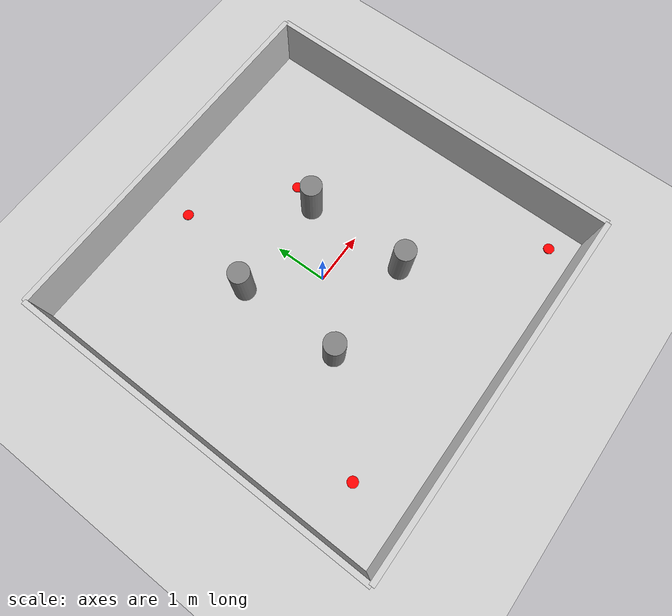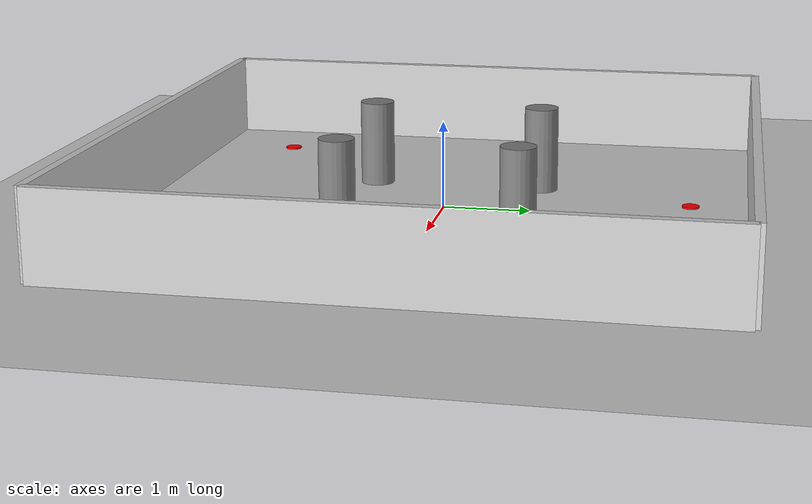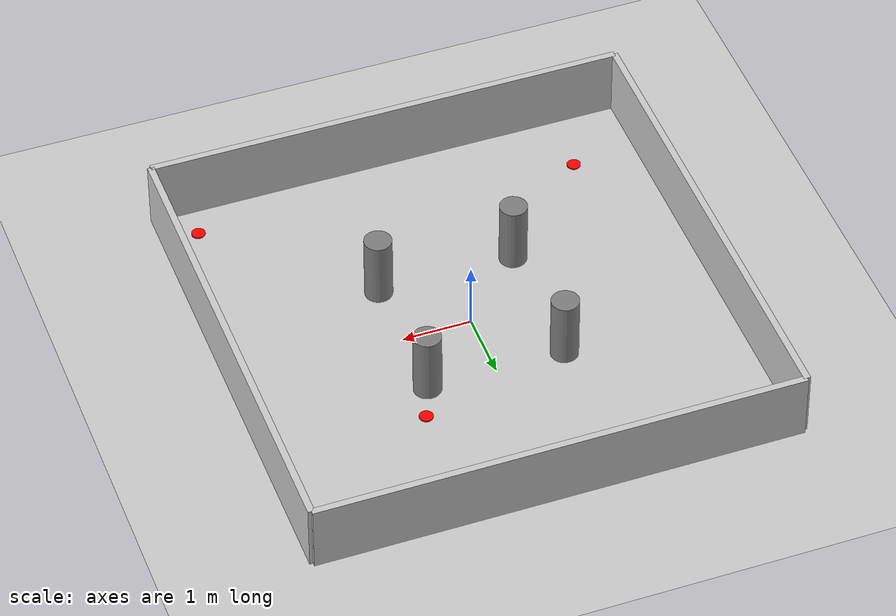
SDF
<sdf version="1.6">
  <world name="stage1">
    <!-- Basic Elements -->
    <include><uri>model://ground_plane</uri></include>
    <include><uri>model://sun</uri></include>

<!-- Boundary Walls -->
<model name="wall1">
  <static>true</static>
  <pose>0 3.5 0.5 0 0 0</pose>
  <link name="link">
    <collision name="collision">
      <geometry><box><size>7 0.1 1</size></box></geometry>
    </collision>
    <visual name="visual">
      <geometry><box><size>7 0.1 1</size></box></geometry>
      <material><ambient>0.8 0.8 0.8 1</ambient></material>
    </visual>
  </link>
</model>

<model name="wall2">
  <static>true</static>
  <pose>0 -3.5 0.5 0 0 0</pose>
  <link name="link">
    <collision name="collision">
      <geometry><box><size>7 0.1 1</size></box></geometry>
    </collision>
    <visual name="visual">
      <geometry><box><size>7 0.1 1</size></box></geometry>
      <material><ambient>0.8 0.8 0.8 1</ambient></material>
    </visual>
  </link>
</model>

<model name="wall3">
  <static>true</static>
  <pose>3.5 0 0.5 0 0 1.5708</pose>
  <link name="link">
    <collision name="collision">
      <geometry><box><size>7 0.1 1</size></box></geometry>
    </collision>
    <visual name="visual">
      <geometry><box><size>7 0.1 1</size></box></geometry>
      <material><ambient>0.8 0.8 0.8 1</ambient></material>
    </visual>
  </link>
</model>

<model name="wall4">
  <static>true</static>
  <pose>-3.5 0 0.5 0 0 1.5708</pose>
  <link name="link">
    <collision name="collision">
      <geometry><box><size>7 0.1 1</size></box></geometry>
    </collision>
    <visual name="visual">
      <geometry><box><size>7 0.1 1</size></box></geometry>
      <material><ambient>0.8 0.8 0.8 1</ambient></material>
    </visual>
  </link>
</model>

<!-- Obstacles -->
<model name="obstacle1">
  <static>true</static>
  <pose>-1 1 0.5 0 0 0</pose>
  <link name="link">
    <collision name="collision">
      <geometry><cylinder><radius>0.2</radius><length>1</length></cylinder></geometry>
    </collision>
    <visual name="visual">
      <geometry><cylinder><radius>0.2</radius><length>1</length></cylinder></geometry>
      <material><ambient>0.5 0.5 0.5 1</ambient></material>
    </visual>
  </link>
</model>

<model name="obstacle2">
  <static>true</static>
  <pose>1 1 0.5 0 0 0</pose>
  <link name="link">
    <collision name="collision">
      <geometry><cylinder><radius>0.2</radius><length>1</length></cylinder></geometry>
    </collision>
    <visual name="visual">
      <geometry><cylinder><radius>0.2</radius><length>1</length></cylinder></geometry>
      <material><ambient>0.5 0.5 0.5 1</ambient></material>
    </visual>
  </link>
</model>

<model name="obstacle3">
  <static>true</static>
  <pose>-1 -1 0.5 0 0 0</pose>
  <link name="link">
    <collision name="collision">
      <geometry><cylinder><radius>0.2</radius><length>1</length></cylinder></geometry>
    </collision>
    <visual name="visual">
      <geometry><cylinder><radius>0.2</radius><length>1</length></cylinder></geometry>
      <material><ambient>0.5 0.5 0.5 1</ambient></material>
    </visual>
  </link>
</model>

<model name="obstacle4">
  <static>true</static>
  <pose>1 -1 0.5 0 0 0</pose>
  <link name="link">
    <collision name="collision">
      <geometry><cylinder><radius>0.2</radius><length>1</length></cylinder></geometry>
    </collision>
    <visual name="visual">
      <geometry><cylinder><radius>0.2</radius><length>1</length></cylinder></geometry>
      <material><ambient>0.5 0.5 0.5 1</ambient></material>
    </visual>
  </link>
</model>

    <model name="goal1">
      <static>true</static>
      <pose>1.2 1.5 0.01 0 0 0</pose>
      <link name="link">
        <visual name="visual">
          <geometry>
            <cylinder><radius>0.1</radius><length>0.02</length></cylinder>
          </geometry>
          <material>
            <ambient>1 0 0 1</ambient>
            <diffuse>1 0 0 1</diffuse>
          </material>
        </visual>
      </link>
    </model>

    <model name="goal2">
      <static>true</static>
      <pose>-2.5 -2.5 0.01 0 0 0</pose>
      <link name="link">
        <visual name="visual">
          <geometry>
            <cylinder><radius>0.1</radius><length>0.02</length></cylinder>
          </geometry>
          <material>
            <ambient>1 0 0 1</ambient>
            <diffuse>1 0 0 1</diffuse>
          </material>
        </visual>
      </link>
    </model>

    <model name="goal3">
      <static>true</static>
      <pose>3.0 -3.0 0.01 0 0 0</pose>
      <link name="link">
        <visual name="visual">
          <geometry>
            <cylinder><radius>0.1</radius><length>0.02</length></cylinder>
          </geometry>
          <material>
            <ambient>1 0 0 1</ambient>
            <diffuse>1 0 0 1</diffuse>
          </material>
        </visual>
      </link>
    </model>

    <model name="goal4">
      <static>true</static>
      <pose>-0.5 2.8 0.01 0 0 0</pose>
      <link name="link">
        <visual name="visual">
          <geometry>
            <cylinder><radius>0.1</radius><length>0.02</length></cylinder>
          </geometry>
          <material>
            <ambient>1 0 0 1</ambient>
            <diffuse>1 0 0 1</diffuse>
          </material>
        </visual>
      </link>
    </model>

</world>
</sdf>
